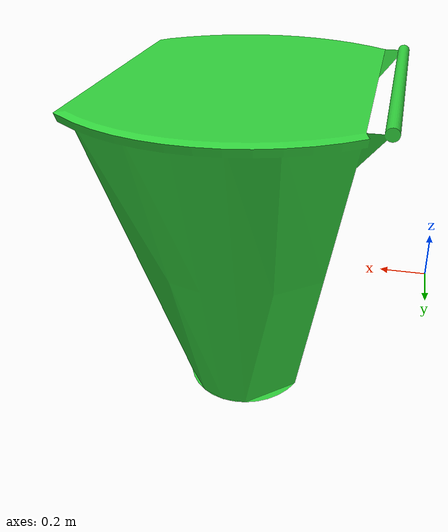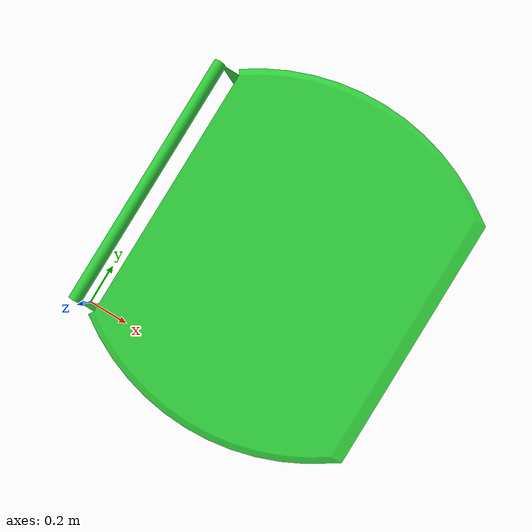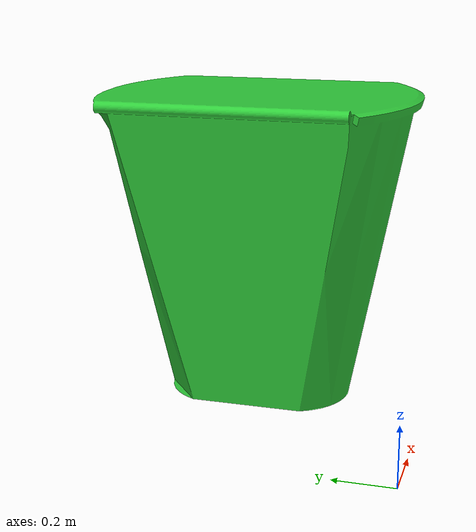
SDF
<?xml version='1.0'?>
<sdf version='1.6'>
  <model name='green_bin'>
    <link name='link_3'>
      <pose frame=''>0.01 0.1 0 0 -0 0</pose>

      <visual name='visual'>
        <pose frame=''>0 0 0 0 -0 0</pose>
        <geometry>
          <mesh>
            <uri>model://green_bin/meshes/green_pyramid.stl</uri>
            <scale>1 1 1</scale>
          </mesh>
        </geometry>
        <material>
          <lighting>1</lighting>

          <ambient>0.188 0.811 0.231 1</ambient>
          <diffuse>0.188 0.811 0.231 1</diffuse>
          <specular>0.01 0.01 0.01 1</specular>
          <emissive>0 0 0 1</emissive>
          <shader type='vertex'>
            <normal_map>__default__</normal_map>
          </shader>
        </material>
        <cast_shadows>1</cast_shadows>
        <transparency>0</transparency>
      </visual>
      <collision name='collision'>
        <laser_retro>0</laser_retro>
        <max_contacts>10</max_contacts>
        <pose frame=''>0 0 0 0 -0 0</pose>
        <geometry>
          <mesh>
            <uri>model://green_bin/meshes/green_pyramid.stl</uri>
            <scale>1 1 1</scale>
          </mesh>
        </geometry>
         </collision>
    </link>
    <static>1</static>
    <allow_auto_disable>1</allow_auto_disable>
  </model>
</sdf>
